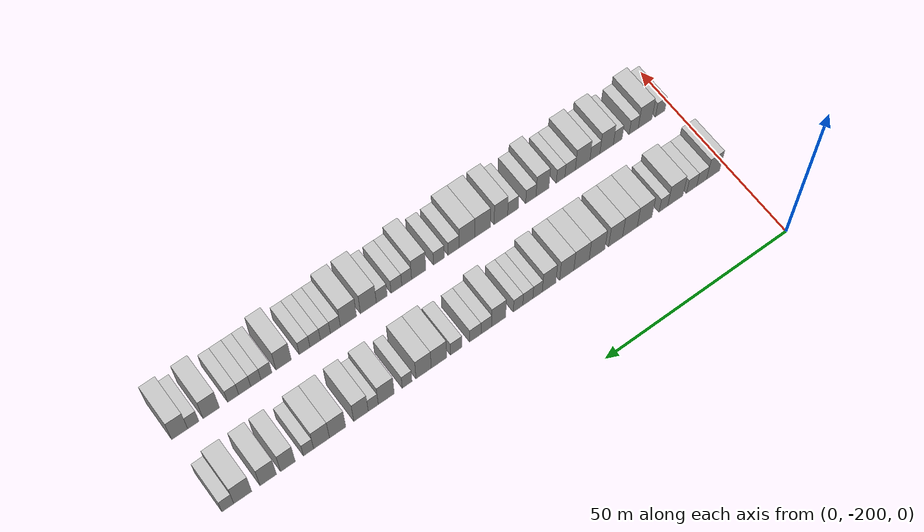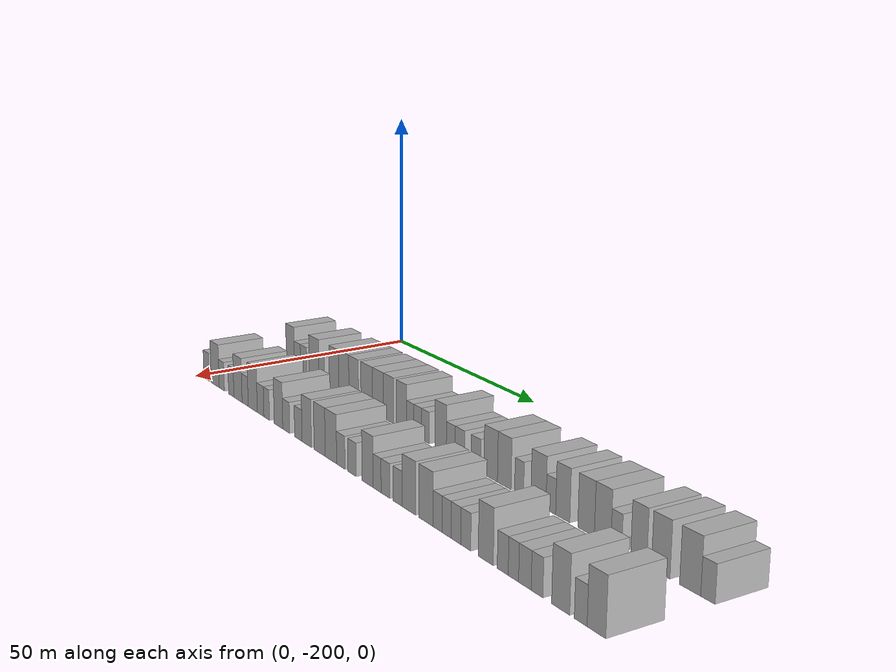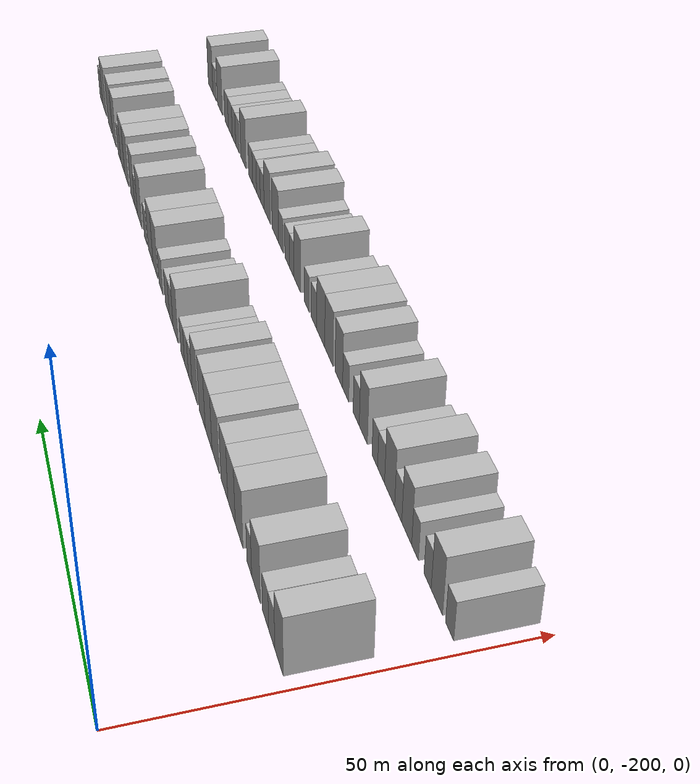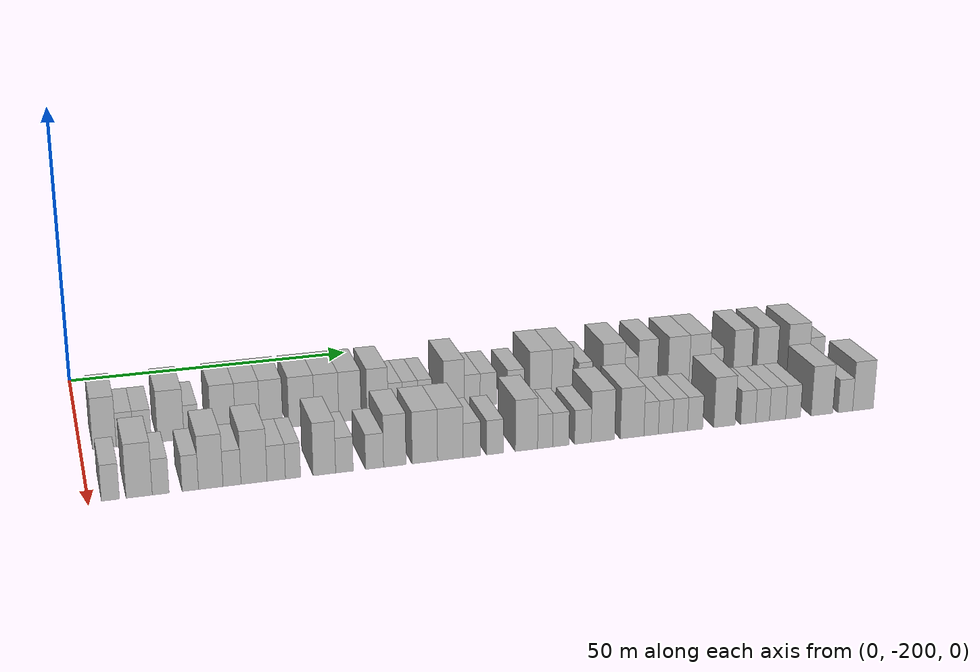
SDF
<sdf version="1.6">
 <world name="default">
  <model name="building_1">
   <static>1</static>
   <pose>25.0000 -196.0993 0 0.000000 0.000000 0.000000</pose>
   <link name="link">
    <pose>0 0 4.50 0 0 0</pose>
    <collision name="collision"><geometry><box><size>10.0000 3.8014 9.0000</size></box></geometry></collision>
    <visual name="visual">
     <cast_shadows>0</cast_shadows>
     <geometry><box><size>10.0000 3.8014 9.0000</size></box></geometry>
     <material>
      <script>
       <uri>model://HANNAS_wall/materials/scripts</uri>
       <uri>model://HANNAS_wall/materials/textures</uri>
       <name>vrc/HANNAS_wall</name>
      </script>
     </material>
    </visual>
   </link>
  </model>
  <model name="building_2">
   <static>1</static>
   <pose>25.0000 -192.8094 0 0.000000 0.000000 0.000000</pose>
   <link name="link">
    <pose>0 0 3.00 0 0 0</pose>
    <collision name="collision"><geometry><box><size>10.0000 2.7783 6.0000</size></box></geometry></collision>
    <visual name="visual">
     <cast_shadows>0</cast_shadows>
     <geometry><box><size>10.0000 2.7783 6.0000</size></box></geometry>
     <material>
      <script>
       <uri>model://HANNAS_wall/materials/scripts</uri>
       <uri>model://HANNAS_wall/materials/textures</uri>
       <name>vrc/HANNAS_wall</name>
      </script>
     </material>
    </visual>
   </link>
  </model>
  <model name="building_3">
   <static>1</static>
   <pose>25.0000 -189.9572 0 0.000000 0.000000 0.000000</pose>
   <link name="link">
    <pose>0 0 3.00 0 0 0</pose>
    <collision name="collision"><geometry><box><size>10.0000 2.9262 6.0000</size></box></geometry></collision>
    <visual name="visual">
     <cast_shadows>0</cast_shadows>
     <geometry><box><size>10.0000 2.9262 6.0000</size></box></geometry>
     <material>
      <script>
       <uri>model://HANNAS_wall/materials/scripts</uri>
       <uri>model://HANNAS_wall/materials/textures</uri>
       <name>vrc/HANNAS_wall</name>
      </script>
     </material>
    </visual>
   </link>
  </model>
  <model name="building_4">
   <static>1</static>
   <pose>25.0000 -185.3345 0 0.000000 0.000000 0.000000</pose>
   <link name="link">
    <pose>0 0 4.50 0 0 0</pose>
    <collision name="collision"><geometry><box><size>10.0000 4.3192 9.0000</size></box></geometry></collision>
    <visual name="visual">
     <cast_shadows>0</cast_shadows>
     <geometry><box><size>10.0000 4.3192 9.0000</size></box></geometry>
     <material>
      <script>
       <uri>model://HANNAS_wall/materials/scripts</uri>
       <uri>model://HANNAS_wall/materials/textures</uri>
       <name>vrc/HANNAS_wall</name>
      </script>
     </material>
    </visual>
   </link>
  </model>
  <model name="building_5">
   <static>1</static>
   <pose>25.0000 -181.9669 0 0.000000 0.000000 0.000000</pose>
   <link name="link">
    <pose>0 0 3.00 0 0 0</pose>
    <collision name="collision"><geometry><box><size>10.0000 2.4160 6.0000</size></box></geometry></collision>
    <visual name="visual">
     <cast_shadows>0</cast_shadows>
     <geometry><box><size>10.0000 2.4160 6.0000</size></box></geometry>
     <material>
      <script>
       <uri>model://HANNAS_wall/materials/scripts</uri>
       <uri>model://HANNAS_wall/materials/textures</uri>
       <name>vrc/HANNAS_wall</name>
      </script>
     </material>
    </visual>
   </link>
  </model>
  <model name="building_6">
   <static>1</static>
   <pose>25.0000 -176.7037 0 0.000000 0.000000 0.000000</pose>
   <link name="link">
    <pose>0 0 4.50 0 0 0</pose>
    <collision name="collision"><geometry><box><size>10.0000 4.1104 9.0000</size></box></geometry></collision>
    <visual name="visual">
     <cast_shadows>0</cast_shadows>
     <geometry><box><size>10.0000 4.1104 9.0000</size></box></geometry>
     <material>
      <script>
       <uri>model://HANNAS_wall/materials/scripts</uri>
       <uri>model://HANNAS_wall/materials/textures</uri>
       <name>vrc/HANNAS_wall</name>
      </script>
     </material>
    </visual>
   </link>
  </model>
  <model name="building_7">
   <static>1</static>
   <pose>25.0000 -172.6036 0 0.000000 0.000000 0.000000</pose>
   <link name="link">
    <pose>0 0 4.50 0 0 0</pose>
    <collision name="collision"><geometry><box><size>10.0000 4.0898 9.0000</size></box></geometry></collision>
    <visual name="visual">
     <cast_shadows>0</cast_shadows>
     <geometry><box><size>10.0000 4.0898 9.0000</size></box></geometry>
     <material>
      <script>
       <uri>model://HANNAS_wall/materials/scripts</uri>
       <uri>model://HANNAS_wall/materials/textures</uri>
       <name>vrc/HANNAS_wall</name>
      </script>
     </material>
    </visual>
   </link>
  </model>
  <model name="building_8">
   <static>1</static>
   <pose>25.0000 -168.6281 0 0.000000 0.000000 0.000000</pose>
   <link name="link">
    <pose>0 0 4.50 0 0 0</pose>
    <collision name="collision"><geometry><box><size>10.0000 3.8613 9.0000</size></box></geometry></collision>
    <visual name="visual">
     <cast_shadows>0</cast_shadows>
     <geometry><box><size>10.0000 3.8613 9.0000</size></box></geometry>
     <material>
      <script>
       <uri>model://HANNAS_wall/materials/scripts</uri>
       <uri>model://HANNAS_wall/materials/textures</uri>
       <name>vrc/HANNAS_wall</name>
      </script>
     </material>
    </visual>
   </link>
  </model>
  <model name="building_9">
   <static>1</static>
   <pose>25.0000 -163.5331 0 0.000000 0.000000 0.000000</pose>
   <link name="link">
    <pose>0 0 4.50 0 0 0</pose>
    <collision name="collision"><geometry><box><size>10.0000 4.3288 9.0000</size></box></geometry></collision>
    <visual name="visual">
     <cast_shadows>0</cast_shadows>
     <geometry><box><size>10.0000 4.3288 9.0000</size></box></geometry>
     <material>
      <script>
       <uri>model://HANNAS_wall/materials/scripts</uri>
       <uri>model://HANNAS_wall/materials/textures</uri>
       <name>vrc/HANNAS_wall</name>
      </script>
     </material>
    </visual>
   </link>
  </model>
  <model name="building_10">
   <static>1</static>
   <pose>25.0000 -159.2722 0 0.000000 0.000000 0.000000</pose>
   <link name="link">
    <pose>0 0 4.50 0 0 0</pose>
    <collision name="collision"><geometry><box><size>10.0000 4.1929 9.0000</size></box></geometry></collision>
    <visual name="visual">
     <cast_shadows>0</cast_shadows>
     <geometry><box><size>10.0000 4.1929 9.0000</size></box></geometry>
     <material>
      <script>
       <uri>model://HANNAS_wall/materials/scripts</uri>
       <uri>model://HANNAS_wall/materials/textures</uri>
       <name>vrc/HANNAS_wall</name>
      </script>
     </material>
    </visual>
   </link>
  </model>
  <model name="building_11">
   <static>1</static>
   <pose>25.0000 -155.2540 0 0.000000 0.000000 0.000000</pose>
   <link name="link">
    <pose>0 0 4.50 0 0 0</pose>
    <collision name="collision"><geometry><box><size>10.0000 3.8434 9.0000</size></box></geometry></collision>
    <visual name="visual">
     <cast_shadows>0</cast_shadows>
     <geometry><box><size>10.0000 3.8434 9.0000</size></box></geometry>
     <material>
      <script>
       <uri>model://HANNAS_wall/materials/scripts</uri>
       <uri>model://HANNAS_wall/materials/textures</uri>
       <name>vrc/HANNAS_wall</name>
      </script>
     </material>
    </visual>
   </link>
  </model>
  <model name="building_12">
   <static>1</static>
   <pose>25.0000 -150.4967 0 0.000000 0.000000 0.000000</pose>
   <link name="link">
    <pose>0 0 4.50 0 0 0</pose>
    <collision name="collision"><geometry><box><size>10.0000 3.6713 9.0000</size></box></geometry></collision>
    <visual name="visual">
     <cast_shadows>0</cast_shadows>
     <geometry><box><size>10.0000 3.6713 9.0000</size></box></geometry>
     <material>
      <script>
       <uri>model://HANNAS_wall/materials/scripts</uri>
       <uri>model://HANNAS_wall/materials/textures</uri>
       <name>vrc/HANNAS_wall</name>
      </script>
     </material>
    </visual>
   </link>
  </model>
  <model name="building_13">
   <static>1</static>
   <pose>25.0000 -147.4128 0 0.000000 0.000000 0.000000</pose>
   <link name="link">
    <pose>0 0 3.00 0 0 0</pose>
    <collision name="collision"><geometry><box><size>10.0000 2.4966 6.0000</size></box></geometry></collision>
    <visual name="visual">
     <cast_shadows>0</cast_shadows>
     <geometry><box><size>10.0000 2.4966 6.0000</size></box></geometry>
     <material>
      <script>
       <uri>model://HANNAS_wall/materials/scripts</uri>
       <uri>model://HANNAS_wall/materials/textures</uri>
       <name>vrc/HANNAS_wall</name>
      </script>
     </material>
    </visual>
   </link>
  </model>
  <model name="building_14">
   <static>1</static>
   <pose>25.0000 -144.8089 0 0.000000 0.000000 0.000000</pose>
   <link name="link">
    <pose>0 0 3.00 0 0 0</pose>
    <collision name="collision"><geometry><box><size>10.0000 2.7111 6.0000</size></box></geometry></collision>
    <visual name="visual">
     <cast_shadows>0</cast_shadows>
     <geometry><box><size>10.0000 2.7111 6.0000</size></box></geometry>
     <material>
      <script>
       <uri>model://HANNAS_wall/materials/scripts</uri>
       <uri>model://HANNAS_wall/materials/textures</uri>
       <name>vrc/HANNAS_wall</name>
      </script>
     </material>
    </visual>
   </link>
  </model>
  <model name="building_15">
   <static>1</static>
   <pose>25.0000 -142.1972 0 0.000000 0.000000 0.000000</pose>
   <link name="link">
    <pose>0 0 3.00 0 0 0</pose>
    <collision name="collision"><geometry><box><size>10.0000 2.5124 6.0000</size></box></geometry></collision>
    <visual name="visual">
     <cast_shadows>0</cast_shadows>
     <geometry><box><size>10.0000 2.5124 6.0000</size></box></geometry>
     <material>
      <script>
       <uri>model://HANNAS_wall/materials/scripts</uri>
       <uri>model://HANNAS_wall/materials/textures</uri>
       <name>vrc/HANNAS_wall</name>
      </script>
     </material>
    </visual>
   </link>
  </model>
  <model name="building_16">
   <static>1</static>
   <pose>25.0000 -137.0712 0 0.000000 0.000000 0.000000</pose>
   <link name="link">
    <pose>0 0 4.50 0 0 0</pose>
    <collision name="collision"><geometry><box><size>10.0000 3.7395 9.0000</size></box></geometry></collision>
    <visual name="visual">
     <cast_shadows>0</cast_shadows>
     <geometry><box><size>10.0000 3.7395 9.0000</size></box></geometry>
     <material>
      <script>
       <uri>model://HANNAS_wall/materials/scripts</uri>
       <uri>model://HANNAS_wall/materials/textures</uri>
       <name>vrc/HANNAS_wall</name>
      </script>
     </material>
    </visual>
   </link>
  </model>
  <model name="building_17">
   <static>1</static>
   <pose>25.0000 -133.7946 0 0.000000 0.000000 0.000000</pose>
   <link name="link">
    <pose>0 0 3.00 0 0 0</pose>
    <collision name="collision"><geometry><box><size>10.0000 2.8137 6.0000</size></box></geometry></collision>
    <visual name="visual">
     <cast_shadows>0</cast_shadows>
     <geometry><box><size>10.0000 2.8137 6.0000</size></box></geometry>
     <material>
      <script>
       <uri>model://HANNAS_wall/materials/scripts</uri>
       <uri>model://HANNAS_wall/materials/textures</uri>
       <name>vrc/HANNAS_wall</name>
      </script>
     </material>
    </visual>
   </link>
  </model>
  <model name="building_18">
   <static>1</static>
   <pose>25.0000 -130.9138 0 0.000000 0.000000 0.000000</pose>
   <link name="link">
    <pose>0 0 3.00 0 0 0</pose>
    <collision name="collision"><geometry><box><size>10.0000 2.9480 6.0000</size></box></geometry></collision>
    <visual name="visual">
     <cast_shadows>0</cast_shadows>
     <geometry><box><size>10.0000 2.9480 6.0000</size></box></geometry>
     <material>
      <script>
       <uri>model://HANNAS_wall/materials/scripts</uri>
       <uri>model://HANNAS_wall/materials/textures</uri>
       <name>vrc/HANNAS_wall</name>
      </script>
     </material>
    </visual>
   </link>
  </model>
  <model name="building_19">
   <static>1</static>
   <pose>25.0000 -125.9477 0 0.000000 0.000000 0.000000</pose>
   <link name="link">
    <pose>0 0 3.00 0 0 0</pose>
    <collision name="collision"><geometry><box><size>10.0000 2.9842 6.0000</size></box></geometry></collision>
    <visual name="visual">
     <cast_shadows>0</cast_shadows>
     <geometry><box><size>10.0000 2.9842 6.0000</size></box></geometry>
     <material>
      <script>
       <uri>model://HANNAS_wall/materials/scripts</uri>
       <uri>model://HANNAS_wall/materials/textures</uri>
       <name>vrc/HANNAS_wall</name>
      </script>
     </material>
    </visual>
   </link>
  </model>
  <model name="building_20">
   <static>1</static>
   <pose>25.0000 -121.4546 0 0.000000 0.000000 0.000000</pose>
   <link name="link">
    <pose>0 0 4.50 0 0 0</pose>
    <collision name="collision"><geometry><box><size>10.0000 4.0020 9.0000</size></box></geometry></collision>
    <visual name="visual">
     <cast_shadows>0</cast_shadows>
     <geometry><box><size>10.0000 4.0020 9.0000</size></box></geometry>
     <material>
      <script>
       <uri>model://HANNAS_wall/materials/scripts</uri>
       <uri>model://HANNAS_wall/materials/textures</uri>
       <name>vrc/HANNAS_wall</name>
      </script>
     </material>
    </visual>
   </link>
  </model>
  <model name="building_21">
   <static>1</static>
   <pose>25.0000 -117.4886 0 0.000000 0.000000 0.000000</pose>
   <link name="link">
    <pose>0 0 4.50 0 0 0</pose>
    <collision name="collision"><geometry><box><size>10.0000 3.9301 9.0000</size></box></geometry></collision>
    <visual name="visual">
     <cast_shadows>0</cast_shadows>
     <geometry><box><size>10.0000 3.9301 9.0000</size></box></geometry>
     <material>
      <script>
       <uri>model://HANNAS_wall/materials/scripts</uri>
       <uri>model://HANNAS_wall/materials/textures</uri>
       <name>vrc/HANNAS_wall</name>
      </script>
     </material>
    </visual>
   </link>
  </model>
  <model name="building_22">
   <static>1</static>
   <pose>25.0000 -113.2681 0 0.000000 0.000000 0.000000</pose>
   <link name="link">
    <pose>0 0 3.00 0 0 0</pose>
    <collision name="collision"><geometry><box><size>10.0000 2.5108 6.0000</size></box></geometry></collision>
    <visual name="visual">
     <cast_shadows>0</cast_shadows>
     <geometry><box><size>10.0000 2.5108 6.0000</size></box></geometry>
     <material>
      <script>
       <uri>model://HANNAS_wall/materials/scripts</uri>
       <uri>model://HANNAS_wall/materials/textures</uri>
       <name>vrc/HANNAS_wall</name>
      </script>
     </material>
    </visual>
   </link>
  </model>
  <model name="building_23">
   <static>1</static>
   <pose>25.0000 -107.9738 0 0.000000 0.000000 0.000000</pose>
   <link name="link">
    <pose>0 0 4.50 0 0 0</pose>
    <collision name="collision"><geometry><box><size>10.0000 4.0778 9.0000</size></box></geometry></collision>
    <visual name="visual">
     <cast_shadows>0</cast_shadows>
     <geometry><box><size>10.0000 4.0778 9.0000</size></box></geometry>
     <material>
      <script>
       <uri>model://HANNAS_wall/materials/scripts</uri>
       <uri>model://HANNAS_wall/materials/textures</uri>
       <name>vrc/HANNAS_wall</name>
      </script>
     </material>
    </visual>
   </link>
  </model>
  <model name="building_24">
   <static>1</static>
   <pose>25.0000 -104.6739 0 0.000000 0.000000 0.000000</pose>
   <link name="link">
    <pose>0 0 3.00 0 0 0</pose>
    <collision name="collision"><geometry><box><size>10.0000 2.5218 6.0000</size></box></geometry></collision>
    <visual name="visual">
     <cast_shadows>0</cast_shadows>
     <geometry><box><size>10.0000 2.5218 6.0000</size></box></geometry>
     <material>
      <script>
       <uri>model://HANNAS_wall/materials/scripts</uri>
       <uri>model://HANNAS_wall/materials/textures</uri>
       <name>vrc/HANNAS_wall</name>
      </script>
     </material>
    </visual>
   </link>
  </model>
  <model name="building_25">
   <static>1</static>
   <pose>25.0000 -101.5927 0 0.000000 0.000000 0.000000</pose>
   <link name="link">
    <pose>0 0 4.50 0 0 0</pose>
    <collision name="collision"><geometry><box><size>10.0000 3.6406 9.0000</size></box></geometry></collision>
    <visual name="visual">
     <cast_shadows>0</cast_shadows>
     <geometry><box><size>10.0000 3.6406 9.0000</size></box></geometry>
     <material>
      <script>
       <uri>model://HANNAS_wall/materials/scripts</uri>
       <uri>model://HANNAS_wall/materials/textures</uri>
       <name>vrc/HANNAS_wall</name>
      </script>
     </material>
    </visual>
   </link>
  </model>
  <model name="building_26">
   <static>1</static>
   <pose>25.0000 -95.7448 0 0.000000 0.000000 0.000000</pose>
   <link name="link">
    <pose>0 0 4.50 0 0 0</pose>
    <collision name="collision"><geometry><box><size>10.0000 4.0553 9.0000</size></box></geometry></collision>
    <visual name="visual">
     <cast_shadows>0</cast_shadows>
     <geometry><box><size>10.0000 4.0553 9.0000</size></box></geometry>
     <material>
      <script>
       <uri>model://HANNAS_wall/materials/scripts</uri>
       <uri>model://HANNAS_wall/materials/textures</uri>
       <name>vrc/HANNAS_wall</name>
      </script>
     </material>
    </visual>
   </link>
  </model>
  <model name="building_27">
   <static>1</static>
   <pose>25.0000 -91.7479 0 0.000000 0.000000 0.000000</pose>
   <link name="link">
    <pose>0 0 4.50 0 0 0</pose>
    <collision name="collision"><geometry><box><size>10.0000 3.9386 9.0000</size></box></geometry></collision>
    <visual name="visual">
     <cast_shadows>0</cast_shadows>
     <geometry><box><size>10.0000 3.9386 9.0000</size></box></geometry>
     <material>
      <script>
       <uri>model://HANNAS_wall/materials/scripts</uri>
       <uri>model://HANNAS_wall/materials/textures</uri>
       <name>vrc/HANNAS_wall</name>
      </script>
     </material>
    </visual>
   </link>
  </model>
  <model name="building_28">
   <static>1</static>
   <pose>25.0000 -88.5145 0 0.000000 0.000000 0.000000</pose>
   <link name="link">
    <pose>0 0 3.00 0 0 0</pose>
    <collision name="collision"><geometry><box><size>10.0000 2.5282 6.0000</size></box></geometry></collision>
    <visual name="visual">
     <cast_shadows>0</cast_shadows>
     <geometry><box><size>10.0000 2.5282 6.0000</size></box></geometry>
     <material>
      <script>
       <uri>model://HANNAS_wall/materials/scripts</uri>
       <uri>model://HANNAS_wall/materials/textures</uri>
       <name>vrc/HANNAS_wall</name>
      </script>
     </material>
    </visual>
   </link>
  </model>
  <model name="building_29">
   <static>1</static>
   <pose>25.0000 -83.4454 0 0.000000 0.000000 0.000000</pose>
   <link name="link">
    <pose>0 0 4.50 0 0 0</pose>
    <collision name="collision"><geometry><box><size>10.0000 3.6101 9.0000</size></box></geometry></collision>
    <visual name="visual">
     <cast_shadows>0</cast_shadows>
     <geometry><box><size>10.0000 3.6101 9.0000</size></box></geometry>
     <material>
      <script>
       <uri>model://HANNAS_wall/materials/scripts</uri>
       <uri>model://HANNAS_wall/materials/textures</uri>
       <name>vrc/HANNAS_wall</name>
      </script>
     </material>
    </visual>
   </link>
  </model>
  <model name="building_30">
   <static>1</static>
   <pose>25.0000 -78.6407 0 0.000000 0.000000 0.000000</pose>
   <link name="link">
    <pose>0 0 4.50 0 0 0</pose>
    <collision name="collision"><geometry><box><size>10.0000 3.9992 9.0000</size></box></geometry></collision>
    <visual name="visual">
     <cast_shadows>0</cast_shadows>
     <geometry><box><size>10.0000 3.9992 9.0000</size></box></geometry>
     <material>
      <script>
       <uri>model://HANNAS_wall/materials/scripts</uri>
       <uri>model://HANNAS_wall/materials/textures</uri>
       <name>vrc/HANNAS_wall</name>
      </script>
     </material>
    </visual>
   </link>
  </model>
  <model name="building_31">
   <static>1</static>
   <pose>25.0000 -72.4856 0 0.000000 0.000000 0.000000</pose>
   <link name="link">
    <pose>0 0 4.50 0 0 0</pose>
    <collision name="collision"><geometry><box><size>10.0000 4.3109 9.0000</size></box></geometry></collision>
    <visual name="visual">
     <cast_shadows>0</cast_shadows>
     <geometry><box><size>10.0000 4.3109 9.0000</size></box></geometry>
     <material>
      <script>
       <uri>model://HANNAS_wall/materials/scripts</uri>
       <uri>model://HANNAS_wall/materials/textures</uri>
       <name>vrc/HANNAS_wall</name>
      </script>
     </material>
    </visual>
   </link>
  </model>
  <model name="building_32">
   <static>1</static>
   <pose>25.0000 -68.9011 0 0.000000 0.000000 0.000000</pose>
   <link name="link">
    <pose>0 0 3.00 0 0 0</pose>
    <collision name="collision"><geometry><box><size>10.0000 2.8582 6.0000</size></box></geometry></collision>
    <visual name="visual">
     <cast_shadows>0</cast_shadows>
     <geometry><box><size>10.0000 2.8582 6.0000</size></box></geometry>
     <material>
      <script>
       <uri>model://HANNAS_wall/materials/scripts</uri>
       <uri>model://HANNAS_wall/materials/textures</uri>
       <name>vrc/HANNAS_wall</name>
      </script>
     </material>
    </visual>
   </link>
  </model>
  <model name="building_99">
   <static>1</static>
   <pose>44.0000 -196.6326 0 0.000000 0.000000 0.000000</pose>
   <link name="link">
    <pose>0 0 3.00 0 0 0</pose>
    <collision name="collision"><geometry><box><size>10.0000 2.7348 6.0000</size></box></geometry></collision>
    <visual name="visual">
     <cast_shadows>0</cast_shadows>
     <geometry><box><size>10.0000 2.7348 6.0000</size></box></geometry>
     <material>
      <script>
       <uri>model://HANNAS_wall/materials/scripts</uri>
       <uri>model://HANNAS_wall/materials/textures</uri>
       <name>vrc/HANNAS_wall</name>
      </script>
     </material>
    </visual>
   </link>
  </model>
  <model name="building_100">
   <static>1</static>
   <pose>44.0000 -192.2758 0 0.000000 0.000000 0.000000</pose>
   <link name="link">
    <pose>0 0 4.50 0 0 0</pose>
    <collision name="collision"><geometry><box><size>10.0000 3.9788 9.0000</size></box></geometry></collision>
    <visual name="visual">
     <cast_shadows>0</cast_shadows>
     <geometry><box><size>10.0000 3.9788 9.0000</size></box></geometry>
     <material>
      <script>
       <uri>model://HANNAS_wall/materials/scripts</uri>
       <uri>model://HANNAS_wall/materials/textures</uri>
       <name>vrc/HANNAS_wall</name>
      </script>
     </material>
    </visual>
   </link>
  </model>
  <model name="building_101">
   <static>1</static>
   <pose>44.0000 -188.9993 0 0.000000 0.000000 0.000000</pose>
   <link name="link">
    <pose>0 0 3.00 0 0 0</pose>
    <collision name="collision"><geometry><box><size>10.0000 2.5742 6.0000</size></box></geometry></collision>
    <visual name="visual">
     <cast_shadows>0</cast_shadows>
     <geometry><box><size>10.0000 2.5742 6.0000</size></box></geometry>
     <material>
      <script>
       <uri>model://HANNAS_wall/materials/scripts</uri>
       <uri>model://HANNAS_wall/materials/textures</uri>
       <name>vrc/HANNAS_wall</name>
      </script>
     </material>
    </visual>
   </link>
  </model>
  <model name="building_102">
   <static>1</static>
   <pose>44.0000 -184.4496 0 0.000000 0.000000 0.000000</pose>
   <link name="link">
    <pose>0 0 3.00 0 0 0</pose>
    <collision name="collision"><geometry><box><size>10.0000 2.5252 6.0000</size></box></geometry></collision>
    <visual name="visual">
     <cast_shadows>0</cast_shadows>
     <geometry><box><size>10.0000 2.5252 6.0000</size></box></geometry>
     <material>
      <script>
       <uri>model://HANNAS_wall/materials/scripts</uri>
       <uri>model://HANNAS_wall/materials/textures</uri>
       <name>vrc/HANNAS_wall</name>
      </script>
     </material>
    </visual>
   </link>
  </model>
  <model name="building_103">
   <static>1</static>
   <pose>44.0000 -181.2866 0 0.000000 0.000000 0.000000</pose>
   <link name="link">
    <pose>0 0 4.50 0 0 0</pose>
    <collision name="collision"><geometry><box><size>10.0000 3.8007 9.0000</size></box></geometry></collision>
    <visual name="visual">
     <cast_shadows>0</cast_shadows>
     <geometry><box><size>10.0000 3.8007 9.0000</size></box></geometry>
     <material>
      <script>
       <uri>model://HANNAS_wall/materials/scripts</uri>
       <uri>model://HANNAS_wall/materials/textures</uri>
       <name>vrc/HANNAS_wall</name>
      </script>
     </material>
    </visual>
   </link>
  </model>
  <model name="building_104">
   <static>1</static>
   <pose>44.0000 -177.9809 0 0.000000 0.000000 0.000000</pose>
   <link name="link">
    <pose>0 0 3.00 0 0 0</pose>
    <collision name="collision"><geometry><box><size>10.0000 2.8106 6.0000</size></box></geometry></collision>
    <visual name="visual">
     <cast_shadows>0</cast_shadows>
     <geometry><box><size>10.0000 2.8106 6.0000</size></box></geometry>
     <material>
      <script>
       <uri>model://HANNAS_wall/materials/scripts</uri>
       <uri>model://HANNAS_wall/materials/textures</uri>
       <name>vrc/HANNAS_wall</name>
      </script>
     </material>
    </visual>
   </link>
  </model>
  <model name="building_105">
   <static>1</static>
   <pose>44.0000 -174.5317 0 0.000000 0.000000 0.000000</pose>
   <link name="link">
    <pose>0 0 4.50 0 0 0</pose>
    <collision name="collision"><geometry><box><size>10.0000 4.0880 9.0000</size></box></geometry></collision>
    <visual name="visual">
     <cast_shadows>0</cast_shadows>
     <geometry><box><size>10.0000 4.0880 9.0000</size></box></geometry>
     <material>
      <script>
       <uri>model://HANNAS_wall/materials/scripts</uri>
       <uri>model://HANNAS_wall/materials/textures</uri>
       <name>vrc/HANNAS_wall</name>
      </script>
     </material>
    </visual>
   </link>
  </model>
  <model name="building_106">
   <static>1</static>
   <pose>44.0000 -171.0336 0 0.000000 0.000000 0.000000</pose>
   <link name="link">
    <pose>0 0 3.00 0 0 0</pose>
    <collision name="collision"><geometry><box><size>10.0000 2.9081 6.0000</size></box></geometry></collision>
    <visual name="visual">
     <cast_shadows>0</cast_shadows>
     <geometry><box><size>10.0000 2.9081 6.0000</size></box></geometry>
     <material>
      <script>
       <uri>model://HANNAS_wall/materials/scripts</uri>
       <uri>model://HANNAS_wall/materials/textures</uri>
       <name>vrc/HANNAS_wall</name>
      </script>
     </material>
    </visual>
   </link>
  </model>
  <model name="building_107">
   <static>1</static>
   <pose>44.0000 -168.3769 0 0.000000 0.000000 0.000000</pose>
   <link name="link">
    <pose>0 0 3.00 0 0 0</pose>
    <collision name="collision"><geometry><box><size>10.0000 2.4054 6.0000</size></box></geometry></collision>
    <visual name="visual">
     <cast_shadows>0</cast_shadows>
     <geometry><box><size>10.0000 2.4054 6.0000</size></box></geometry>
     <material>
      <script>
       <uri>model://HANNAS_wall/materials/scripts</uri>
       <uri>model://HANNAS_wall/materials/textures</uri>
       <name>vrc/HANNAS_wall</name>
      </script>
     </material>
    </visual>
   </link>
  </model>
  <model name="building_108">
   <static>1</static>
   <pose>44.0000 -163.3719 0 0.000000 0.000000 0.000000</pose>
   <link name="link">
    <pose>0 0 4.50 0 0 0</pose>
    <collision name="collision"><geometry><box><size>10.0000 3.6046 9.0000</size></box></geometry></collision>
    <visual name="visual">
     <cast_shadows>0</cast_shadows>
     <geometry><box><size>10.0000 3.6046 9.0000</size></box></geometry>
     <material>
      <script>
       <uri>model://HANNAS_wall/materials/scripts</uri>
       <uri>model://HANNAS_wall/materials/textures</uri>
       <name>vrc/HANNAS_wall</name>
      </script>
     </material>
    </visual>
   </link>
  </model>
  <model name="building_109">
   <static>1</static>
   <pose>44.0000 -160.1533 0 0.000000 0.000000 0.000000</pose>
   <link name="link">
    <pose>0 0 3.00 0 0 0</pose>
    <collision name="collision"><geometry><box><size>10.0000 2.8325 6.0000</size></box></geometry></collision>
    <visual name="visual">
     <cast_shadows>0</cast_shadows>
     <geometry><box><size>10.0000 2.8325 6.0000</size></box></geometry>
     <material>
      <script>
       <uri>model://HANNAS_wall/materials/scripts</uri>
       <uri>model://HANNAS_wall/materials/textures</uri>
       <name>vrc/HANNAS_wall</name>
      </script>
     </material>
    </visual>
   </link>
  </model>
  <model name="building_110">
   <static>1</static>
   <pose>44.0000 -155.2711 0 0.000000 0.000000 0.000000</pose>
   <link name="link">
    <pose>0 0 3.00 0 0 0</pose>
    <collision name="collision"><geometry><box><size>10.0000 2.9318 6.0000</size></box></geometry></collision>
    <visual name="visual">
     <cast_shadows>0</cast_shadows>
     <geometry><box><size>10.0000 2.9318 6.0000</size></box></geometry>
     <material>
      <script>
       <uri>model://HANNAS_wall/materials/scripts</uri>
       <uri>model://HANNAS_wall/materials/textures</uri>
       <name>vrc/HANNAS_wall</name>
      </script>
     </material>
    </visual>
   </link>
  </model>
  <model name="building_111">
   <static>1</static>
   <pose>44.0000 -151.9623 0 0.000000 0.000000 0.000000</pose>
   <link name="link">
    <pose>0 0 4.50 0 0 0</pose>
    <collision name="collision"><geometry><box><size>10.0000 3.6858 9.0000</size></box></geometry></collision>
    <visual name="visual">
     <cast_shadows>0</cast_shadows>
     <geometry><box><size>10.0000 3.6858 9.0000</size></box></geometry>
     <material>
      <script>
       <uri>model://HANNAS_wall/materials/scripts</uri>
       <uri>model://HANNAS_wall/materials/textures</uri>
       <name>vrc/HANNAS_wall</name>
      </script>
     </material>
    </visual>
   </link>
  </model>
  <model name="building_112">
   <static>1</static>
   <pose>44.0000 -147.0157 0 0.000000 0.000000 0.000000</pose>
   <link name="link">
    <pose>0 0 4.50 0 0 0</pose>
    <collision name="collision"><geometry><box><size>10.0000 4.2075 9.0000</size></box></geometry></collision>
    <visual name="visual">
     <cast_shadows>0</cast_shadows>
     <geometry><box><size>10.0000 4.2075 9.0000</size></box></geometry>
     <material>
      <script>
       <uri>model://HANNAS_wall/materials/scripts</uri>
       <uri>model://HANNAS_wall/materials/textures</uri>
       <name>vrc/HANNAS_wall</name>
      </script>
     </material>
    </visual>
   </link>
  </model>
  <model name="building_113">
   <static>1</static>
   <pose>44.0000 -142.8217 0 0.000000 0.000000 0.000000</pose>
   <link name="link">
    <pose>0 0 4.50 0 0 0</pose>
    <collision name="collision"><geometry><box><size>10.0000 4.1804 9.0000</size></box></geometry></collision>
    <visual name="visual">
     <cast_shadows>0</cast_shadows>
     <geometry><box><size>10.0000 4.1804 9.0000</size></box></geometry>
     <material>
      <script>
       <uri>model://HANNAS_wall/materials/scripts</uri>
       <uri>model://HANNAS_wall/materials/textures</uri>
       <name>vrc/HANNAS_wall</name>
      </script>
     </material>
    </visual>
   </link>
  </model>
  <model name="building_114">
   <static>1</static>
   <pose>44.0000 -139.2404 0 0.000000 0.000000 0.000000</pose>
   <link name="link">
    <pose>0 0 3.00 0 0 0</pose>
    <collision name="collision"><geometry><box><size>10.0000 2.9822 6.0000</size></box></geometry></collision>
    <visual name="visual">
     <cast_shadows>0</cast_shadows>
     <geometry><box><size>10.0000 2.9822 6.0000</size></box></geometry>
     <material>
      <script>
       <uri>model://HANNAS_wall/materials/scripts</uri>
       <uri>model://HANNAS_wall/materials/textures</uri>
       <name>vrc/HANNAS_wall</name>
      </script>
     </material>
    </visual>
   </link>
  </model>
  <model name="building_115">
   <static>1</static>
   <pose>44.0000 -135.3089 0 0.000000 0.000000 0.000000</pose>
   <link name="link">
    <pose>0 0 3.00 0 0 0</pose>
    <collision name="collision"><geometry><box><size>10.0000 2.8810 6.0000</size></box></geometry></collision>
    <visual name="visual">
     <cast_shadows>0</cast_shadows>
     <geometry><box><size>10.0000 2.8810 6.0000</size></box></geometry>
     <material>
      <script>
       <uri>model://HANNAS_wall/materials/scripts</uri>
       <uri>model://HANNAS_wall/materials/textures</uri>
       <name>vrc/HANNAS_wall</name>
      </script>
     </material>
    </visual>
   </link>
  </model>
  <model name="building_116">
   <static>1</static>
   <pose>44.0000 -129.9701 0 0.000000 0.000000 0.000000</pose>
   <link name="link">
    <pose>0 0 4.50 0 0 0</pose>
    <collision name="collision"><geometry><box><size>10.0000 3.7967 9.0000</size></box></geometry></collision>
    <visual name="visual">
     <cast_shadows>0</cast_shadows>
     <geometry><box><size>10.0000 3.7967 9.0000</size></box></geometry>
     <material>
      <script>
       <uri>model://HANNAS_wall/materials/scripts</uri>
       <uri>model://HANNAS_wall/materials/textures</uri>
       <name>vrc/HANNAS_wall</name>
      </script>
     </material>
    </visual>
   </link>
  </model>
  <model name="building_117">
   <static>1</static>
   <pose>44.0000 -126.7880 0 0.000000 0.000000 0.000000</pose>
   <link name="link">
    <pose>0 0 3.00 0 0 0</pose>
    <collision name="collision"><geometry><box><size>10.0000 2.5674 6.0000</size></box></geometry></collision>
    <visual name="visual">
     <cast_shadows>0</cast_shadows>
     <geometry><box><size>10.0000 2.5674 6.0000</size></box></geometry>
     <material>
      <script>
       <uri>model://HANNAS_wall/materials/scripts</uri>
       <uri>model://HANNAS_wall/materials/textures</uri>
       <name>vrc/HANNAS_wall</name>
      </script>
     </material>
    </visual>
   </link>
  </model>
  <model name="building_118">
   <static>1</static>
   <pose>44.0000 -124.1050 0 0.000000 0.000000 0.000000</pose>
   <link name="link">
    <pose>0 0 3.00 0 0 0</pose>
    <collision name="collision"><geometry><box><size>10.0000 2.7986 6.0000</size></box></geometry></collision>
    <visual name="visual">
     <cast_shadows>0</cast_shadows>
     <geometry><box><size>10.0000 2.7986 6.0000</size></box></geometry>
     <material>
      <script>
       <uri>model://HANNAS_wall/materials/scripts</uri>
       <uri>model://HANNAS_wall/materials/textures</uri>
       <name>vrc/HANNAS_wall</name>
      </script>
     </material>
    </visual>
   </link>
  </model>
  <model name="building_119">
   <static>1</static>
   <pose>44.0000 -120.2794 0 0.000000 0.000000 0.000000</pose>
   <link name="link">
    <pose>0 0 3.00 0 0 0</pose>
    <collision name="collision"><geometry><box><size>10.0000 2.8526 6.0000</size></box></geometry></collision>
    <visual name="visual">
     <cast_shadows>0</cast_shadows>
     <geometry><box><size>10.0000 2.8526 6.0000</size></box></geometry>
     <material>
      <script>
       <uri>model://HANNAS_wall/materials/scripts</uri>
       <uri>model://HANNAS_wall/materials/textures</uri>
       <name>vrc/HANNAS_wall</name>
      </script>
     </material>
    </visual>
   </link>
  </model>
  <model name="building_120">
   <static>1</static>
   <pose>44.0000 -116.7991 0 0.000000 0.000000 0.000000</pose>
   <link name="link">
    <pose>0 0 4.50 0 0 0</pose>
    <collision name="collision"><geometry><box><size>10.0000 4.1080 9.0000</size></box></geometry></collision>
    <visual name="visual">
     <cast_shadows>0</cast_shadows>
     <geometry><box><size>10.0000 4.1080 9.0000</size></box></geometry>
     <material>
      <script>
       <uri>model://HANNAS_wall/materials/scripts</uri>
       <uri>model://HANNAS_wall/materials/textures</uri>
       <name>vrc/HANNAS_wall</name>
      </script>
     </material>
    </visual>
   </link>
  </model>
  <model name="building_121">
   <static>1</static>
   <pose>44.0000 -111.6700 0 0.000000 0.000000 0.000000</pose>
   <link name="link">
    <pose>0 0 4.50 0 0 0</pose>
    <collision name="collision"><geometry><box><size>10.0000 4.1502 9.0000</size></box></geometry></collision>
    <visual name="visual">
     <cast_shadows>0</cast_shadows>
     <geometry><box><size>10.0000 4.1502 9.0000</size></box></geometry>
     <material>
      <script>
       <uri>model://HANNAS_wall/materials/scripts</uri>
       <uri>model://HANNAS_wall/materials/textures</uri>
       <name>vrc/HANNAS_wall</name>
      </script>
     </material>
    </visual>
   </link>
  </model>
  <model name="building_122">
   <static>1</static>
   <pose>44.0000 -108.3150 0 0.000000 0.000000 0.000000</pose>
   <link name="link">
    <pose>0 0 3.00 0 0 0</pose>
    <collision name="collision"><geometry><box><size>10.0000 2.5598 6.0000</size></box></geometry></collision>
    <visual name="visual">
     <cast_shadows>0</cast_shadows>
     <geometry><box><size>10.0000 2.5598 6.0000</size></box></geometry>
     <material>
      <script>
       <uri>model://HANNAS_wall/materials/scripts</uri>
       <uri>model://HANNAS_wall/materials/textures</uri>
       <name>vrc/HANNAS_wall</name>
      </script>
     </material>
    </visual>
   </link>
  </model>
  <model name="building_123">
   <static>1</static>
   <pose>44.0000 -105.7639 0 0.000000 0.000000 0.000000</pose>
   <link name="link">
    <pose>0 0 3.00 0 0 0</pose>
    <collision name="collision"><geometry><box><size>10.0000 2.5426 6.0000</size></box></geometry></collision>
    <visual name="visual">
     <cast_shadows>0</cast_shadows>
     <geometry><box><size>10.0000 2.5426 6.0000</size></box></geometry>
     <material>
      <script>
       <uri>model://HANNAS_wall/materials/scripts</uri>
       <uri>model://HANNAS_wall/materials/textures</uri>
       <name>vrc/HANNAS_wall</name>
      </script>
     </material>
    </visual>
   </link>
  </model>
  <model name="building_124">
   <static>1</static>
   <pose>44.0000 -103.1593 0 0.000000 0.000000 0.000000</pose>
   <link name="link">
    <pose>0 0 3.00 0 0 0</pose>
    <collision name="collision"><geometry><box><size>10.0000 2.6666 6.0000</size></box></geometry></collision>
    <visual name="visual">
     <cast_shadows>0</cast_shadows>
     <geometry><box><size>10.0000 2.6666 6.0000</size></box></geometry>
     <material>
      <script>
       <uri>model://HANNAS_wall/materials/scripts</uri>
       <uri>model://HANNAS_wall/materials/textures</uri>
       <name>vrc/HANNAS_wall</name>
      </script>
     </material>
    </visual>
   </link>
  </model>
  <model name="building_125">
   <static>1</static>
   <pose>44.0000 -100.4683 0 0.000000 0.000000 0.000000</pose>
   <link name="link">
    <pose>0 0 3.00 0 0 0</pose>
    <collision name="collision"><geometry><box><size>10.0000 2.7154 6.0000</size></box></geometry></collision>
    <visual name="visual">
     <cast_shadows>0</cast_shadows>
     <geometry><box><size>10.0000 2.7154 6.0000</size></box></geometry>
     <material>
      <script>
       <uri>model://HANNAS_wall/materials/scripts</uri>
       <uri>model://HANNAS_wall/materials/textures</uri>
       <name>vrc/HANNAS_wall</name>
      </script>
     </material>
    </visual>
   </link>
  </model>
  <model name="building_126">
   <static>1</static>
   <pose>44.0000 -95.1709 0 0.000000 0.000000 0.000000</pose>
   <link name="link">
    <pose>0 0 4.50 0 0 0</pose>
    <collision name="collision"><geometry><box><size>10.0000 3.8792 9.0000</size></box></geometry></collision>
    <visual name="visual">
     <cast_shadows>0</cast_shadows>
     <geometry><box><size>10.0000 3.8792 9.0000</size></box></geometry>
     <material>
      <script>
       <uri>model://HANNAS_wall/materials/scripts</uri>
       <uri>model://HANNAS_wall/materials/textures</uri>
       <name>vrc/HANNAS_wall</name>
      </script>
     </material>
    </visual>
   </link>
  </model>
  <model name="building_127">
   <static>1</static>
   <pose>44.0000 -90.8681 0 0.000000 0.000000 0.000000</pose>
   <link name="link">
    <pose>0 0 3.00 0 0 0</pose>
    <collision name="collision"><geometry><box><size>10.0000 2.7265 6.0000</size></box></geometry></collision>
    <visual name="visual">
     <cast_shadows>0</cast_shadows>
     <geometry><box><size>10.0000 2.7265 6.0000</size></box></geometry>
     <material>
      <script>
       <uri>model://HANNAS_wall/materials/scripts</uri>
       <uri>model://HANNAS_wall/materials/textures</uri>
       <name>vrc/HANNAS_wall</name>
      </script>
     </material>
    </visual>
   </link>
  </model>
  <model name="building_128">
   <static>1</static>
   <pose>44.0000 -88.2337 0 0.000000 0.000000 0.000000</pose>
   <link name="link">
    <pose>0 0 3.00 0 0 0</pose>
    <collision name="collision"><geometry><box><size>10.0000 2.5423 6.0000</size></box></geometry></collision>
    <visual name="visual">
     <cast_shadows>0</cast_shadows>
     <geometry><box><size>10.0000 2.5423 6.0000</size></box></geometry>
     <material>
      <script>
       <uri>model://HANNAS_wall/materials/scripts</uri>
       <uri>model://HANNAS_wall/materials/textures</uri>
       <name>vrc/HANNAS_wall</name>
      </script>
     </material>
    </visual>
   </link>
  </model>
  <model name="building_129">
   <static>1</static>
   <pose>44.0000 -85.4653 0 0.000000 0.000000 0.000000</pose>
   <link name="link">
    <pose>0 0 3.00 0 0 0</pose>
    <collision name="collision"><geometry><box><size>10.0000 2.9945 6.0000</size></box></geometry></collision>
    <visual name="visual">
     <cast_shadows>0</cast_shadows>
     <geometry><box><size>10.0000 2.9945 6.0000</size></box></geometry>
     <material>
      <script>
       <uri>model://HANNAS_wall/materials/scripts</uri>
       <uri>model://HANNAS_wall/materials/textures</uri>
       <name>vrc/HANNAS_wall</name>
      </script>
     </material>
    </visual>
   </link>
  </model>
  <model name="building_130">
   <static>1</static>
   <pose>44.0000 -82.6027 0 0.000000 0.000000 0.000000</pose>
   <link name="link">
    <pose>0 0 3.00 0 0 0</pose>
    <collision name="collision"><geometry><box><size>10.0000 2.7308 6.0000</size></box></geometry></collision>
    <visual name="visual">
     <cast_shadows>0</cast_shadows>
     <geometry><box><size>10.0000 2.7308 6.0000</size></box></geometry>
     <material>
      <script>
       <uri>model://HANNAS_wall/materials/scripts</uri>
       <uri>model://HANNAS_wall/materials/textures</uri>
       <name>vrc/HANNAS_wall</name>
      </script>
     </material>
    </visual>
   </link>
  </model>
  <model name="building_131">
   <static>1</static>
   <pose>44.0000 -77.2255 0 0.000000 0.000000 0.000000</pose>
   <link name="link">
    <pose>0 0 4.50 0 0 0</pose>
    <collision name="collision"><geometry><box><size>10.0000 4.0234 9.0000</size></box></geometry></collision>
    <visual name="visual">
     <cast_shadows>0</cast_shadows>
     <geometry><box><size>10.0000 4.0234 9.0000</size></box></geometry>
     <material>
      <script>
       <uri>model://HANNAS_wall/materials/scripts</uri>
       <uri>model://HANNAS_wall/materials/textures</uri>
       <name>vrc/HANNAS_wall</name>
      </script>
     </material>
    </visual>
   </link>
  </model>
  <model name="building_132">
   <static>1</static>
   <pose>44.0000 -72.8439 0 0.000000 0.000000 0.000000</pose>
   <link name="link">
    <pose>0 0 3.00 0 0 0</pose>
    <collision name="collision"><geometry><box><size>10.0000 2.7400 6.0000</size></box></geometry></collision>
    <visual name="visual">
     <cast_shadows>0</cast_shadows>
     <geometry><box><size>10.0000 2.7400 6.0000</size></box></geometry>
     <material>
      <script>
       <uri>model://HANNAS_wall/materials/scripts</uri>
       <uri>model://HANNAS_wall/materials/textures</uri>
       <name>vrc/HANNAS_wall</name>
      </script>
     </material>
    </visual>
   </link>
  </model>
  <model name="building_133">
   <static>1</static>
   <pose>44.0000 -69.5237 0 0.000000 0.000000 0.000000</pose>
   <link name="link">
    <pose>0 0 4.50 0 0 0</pose>
    <collision name="collision"><geometry><box><size>10.0000 3.9004 9.0000</size></box></geometry></collision>
    <visual name="visual">
     <cast_shadows>0</cast_shadows>
     <geometry><box><size>10.0000 3.9004 9.0000</size></box></geometry>
     <material>
      <script>
       <uri>model://HANNAS_wall/materials/scripts</uri>
       <uri>model://HANNAS_wall/materials/textures</uri>
       <name>vrc/HANNAS_wall</name>
      </script>
     </material>
    </visual>
   </link>
  </model>
 </world>
</sdf>
